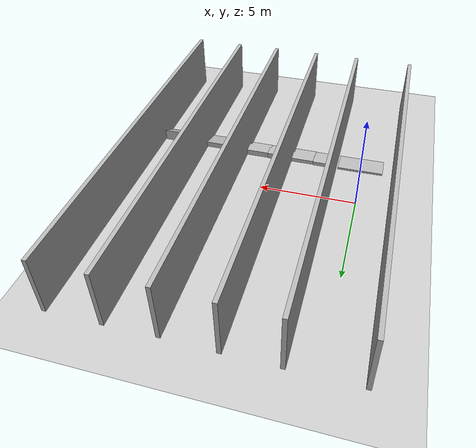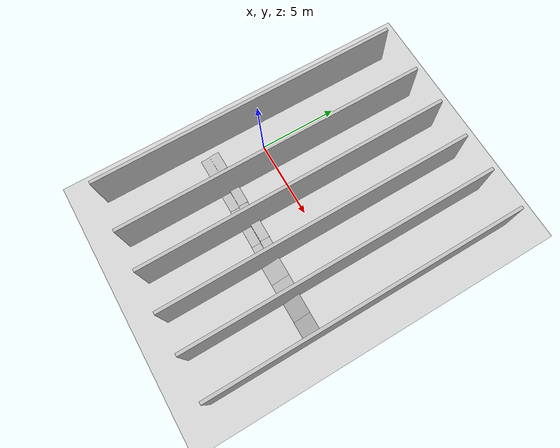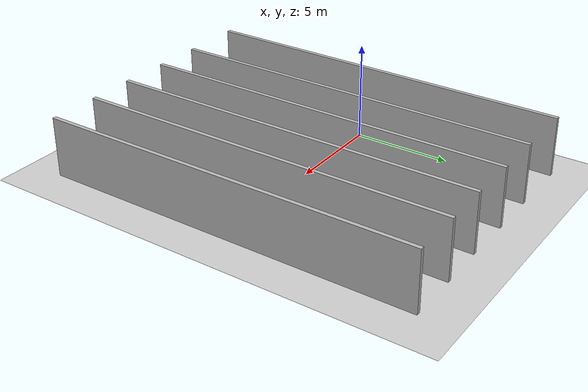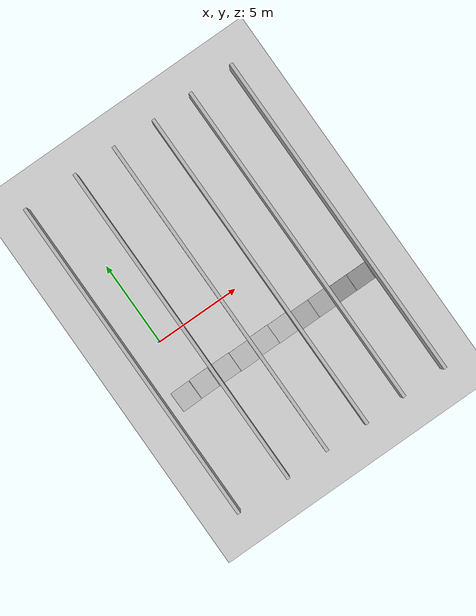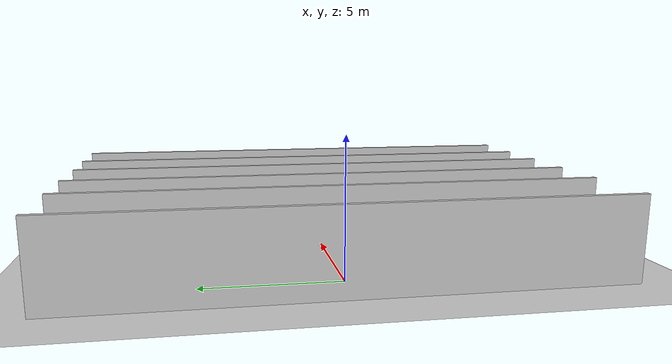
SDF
<sdf version="1.7">
 <world name="default">
  <light name="sun" type="directional">
   <pose>0 0 10 0 -0 0</pose>
   <diffuse>0.8 0.8 0.8 1</diffuse>
   <specular>0.2 0.2 0.2 1</specular>
   <attenuation>
    <range>1000</range>
    <constant>0.9</constant>
    <linear>0.01</linear>
    <quadratic>0.001</quadratic>
   </attenuation>
   <direction>-0.5 0.1 -0.9</direction>
   <spot><inner_angle>0</inner_angle><outer_angle>0</outer_angle><falloff>0</falloff></spot>
  </light>
  <model name="ground_plane">
   <static>1</static>
   <link name="link">
    <collision name="collision">
     <geometry><plane><normal>0 0 1</normal><size>100 100</size></plane></geometry>
     <surface>
      <contact><collide_bitmask>65535</collide_bitmask></contact>
      <friction><ode><mu>100</mu><mu2>50</mu2></ode></friction>
     </surface>
    </collision>
    <visual name="visual">
     <cast_shadows>0</cast_shadows>
     <geometry><plane><normal>0 0 1</normal><size>100 100</size></plane></geometry>
     <material>
      <script><uri>file://media/materials/scripts/gazebo.material</uri><name>Gazebo/Grey</name></script>
     </material>
    </visual>
   </link>
  </model>
  <gravity>0 0 -9.8</gravity>
  <magnetic_field>6e-06 2.3e-05 -4.2e-05</magnetic_field>
  <atmosphere type="adiabatic"/>
  <physics type="ode">
   <max_step_size>0.001</max_step_size>
   <real_time_factor>1</real_time_factor>
   <real_time_update_rate>1000</real_time_update_rate>
  </physics>
  <scene><ambient>0.4 0.4 0.4 1</ambient><background>0.7 0.7 0.7 1</background><shadows>1</shadows></scene>
  <spherical_coordinates>
   <surface_model>EARTH_WGS84</surface_model>
   <latitude_deg>0</latitude_deg>
   <longitude_deg>0</longitude_deg>
   <elevation>0</elevation>
   <heading_deg>0</heading_deg>
  </spherical_coordinates>
  <model name="Wall">
   <static>1</static>
   <link name="link">
    <inertial>
     <pose>0 0 0.4 0 -0 0</pose>
     <mass>500</mass>
     <inertia><ixx>51.2096</ixx><iyy>51.2096</iyy><izz>25</izz><ixy>0</ixy><ixz>0</ixz><iyz>0</iyz></inertia>
    </inertial>
    <collision name="collision">
     <geometry><mesh><scale>1 1 1</scale><uri>model://wall/meshes/wall.dae</uri></mesh></geometry>
    </collision>
    <visual name="visual">
     <geometry><mesh><scale>1 1 1</scale><uri>model://wall/meshes/wall.dae</uri></mesh></geometry>
    </visual>
   </link>
   <pose>-1.72558 0 1.5 0 -0 0</pose>
  </model>
  <model name="Wall_clone">
   <static>1</static>
   <link name="link">
    <inertial>
     <pose>0 0 0.4 0 -0 0</pose>
     <mass>500</mass>
     <inertia><ixx>51.2096</ixx><iyy>51.2096</iyy><izz>25</izz><ixy>0</ixy><ixz>0</ixz><iyz>0</iyz></inertia>
    </inertial>
    <collision name="collision">
     <geometry><mesh><scale>1 1 1</scale><uri>model://wall/meshes/wall.dae</uri></mesh></geometry>
    </collision>
    <visual name="visual">
     <geometry><mesh><scale>1 1 1</scale><uri>model://wall/meshes/wall.dae</uri></mesh></geometry>
    </visual>
   </link>
   <pose>1.48616 0 1.5 0 -0 0</pose>
  </model>
  <model name="Step10">
   <static>1</static>
   <link name="link">
    <gravity>0</gravity>
    <collision name="collision">
     <geometry><mesh><scale>1 1 1</scale><uri>model://step_10/meshes/step10.dae</uri></mesh></geometry>
    </collision>
    <visual name="visual">
     <geometry><mesh><scale>1 1 1</scale><uri>model://step_10/meshes/step10.dae</uri></mesh></geometry>
    </visual>
   </link>
   <pose>1.30177 -3.8 0 0 -0 1.57</pose>
  </model>
  <model name="Step20">
   <static>1</static>
   <link name="link">
    <gravity>0</gravity>
    <collision name="collision">
     <geometry><mesh><scale>1 1 1</scale><uri>model://step_20/meshes/step20.dae</uri></mesh></geometry>
    </collision>
    <visual name="visual">
     <geometry><mesh><scale>1 1 1</scale><uri>model://step_20/meshes/step20.dae</uri></mesh></geometry>
    </visual>
   </link>
   <pose>2.7 -3.8 0 0 -0 1.57</pose>
  </model>
  <model name="Wall_clone_clone_clone">
   <static>1</static>
   <link name="link">
    <inertial>
     <pose>0 0 0.4 0 -0 0</pose>
     <mass>500</mass>
     <inertia><ixx>51.2096</ixx><iyy>51.2096</iyy><izz>25</izz><ixy>0</ixy><ixz>0</ixz><iyz>0</iyz></inertia>
    </inertial>
    <collision name="collision">
     <geometry><mesh><scale>1 1 1</scale><uri>model://wall/meshes/wall.dae</uri></mesh></geometry>
    </collision>
    <visual name="visual">
     <geometry><mesh><scale>1 1 1</scale><uri>model://wall/meshes/wall.dae</uri></mesh></geometry>
    </visual>
   </link>
   <pose>4.01496 0 1.5 0 -0 0</pose>
  </model>
  <model name="Ramp15Deg">
   <static>1</static>
   <link name="link">
    <gravity>0</gravity>
    <collision name="collision">
     <geometry><mesh><scale>1 1 1</scale><uri>model://ramp_15/meshes/nist15.dae</uri></mesh></geometry>
    </collision>
    <visual name="visual">
     <geometry><mesh><scale>1 1 1</scale><uri>model://ramp_15/meshes/nist15.dae</uri></mesh></geometry>
    </visual>
   </link>
   <pose>9.03169 -3.88275 0 0 -0 1.57</pose>
  </model>
  <model name="Wall_clone_clone_clone_clone">
   <static>1</static>
   <link name="link">
    <inertial>
     <pose>0 0 0.4 0 -0 0</pose>
     <mass>500</mass>
     <inertia><ixx>51.2096</ixx><iyy>51.2096</iyy><izz>25</izz><ixy>0</ixy><ixz>0</ixz><iyz>0</iyz></inertia>
    </inertial>
    <collision name="collision">
     <geometry><mesh><scale>1 1 1</scale><uri>model://wall/meshes/wall.dae</uri></mesh></geometry>
    </collision>
    <visual name="visual">
     <geometry><mesh><scale>1 1 1</scale><uri>model://wall/meshes/wall.dae</uri></mesh></geometry>
    </visual>
   </link>
   <pose>6.56906 -0.041893 1.5 0 -0 0</pose>
  </model>
  <model name="Ramp30Deg">
   <static>1</static>
   <link name="link">
    <gravity>0</gravity>
    <collision name="collision">
     <geometry><mesh><scale>1 1 1</scale><uri>model://ramp_30/meshes/nist30.dae</uri></mesh></geometry>
    </collision>
    <visual name="visual">
     <geometry><mesh><scale>1 1 1</scale><uri>model://ramp_30/meshes/nist30.dae</uri></mesh></geometry>
    </visual>
   </link>
   <pose>11.5042 -3.85601 0 0 -0 1.57</pose>
  </model>
  <model name="Wall_clone_clone_clone_clone_clone">
   <static>1</static>
   <link name="link">
    <inertial>
     <pose>0 0 0.4 0 -0 0</pose>
     <mass>500</mass>
     <inertia><ixx>51.2096</ixx><iyy>51.2096</iyy><izz>25</izz><ixy>0</ixy><ixz>0</ixz><iyz>0</iyz></inertia>
    </inertial>
    <collision name="collision">
     <geometry><mesh><scale>1 1 1</scale><uri>model://wall/meshes/wall.dae</uri></mesh></geometry>
    </collision>
    <visual name="visual">
     <geometry><mesh><scale>1 1 1</scale><uri>model://wall/meshes/wall.dae</uri></mesh></geometry>
    </visual>
   </link>
   <pose>9.00414 0 1.5 0 -0 0</pose>
  </model>
  <model name="Step20_clone">
   <static>1</static>
   <link name="link">
    <gravity>0</gravity>
    <collision name="collision">
     <geometry><mesh><scale>1 1 1</scale><uri>model://step_20/meshes/step20.dae</uri></mesh></geometry>
    </collision>
    <visual name="visual">
     <geometry><mesh><scale>1 1 1</scale><uri>model://step_20/meshes/step20.dae</uri></mesh></geometry>
    </visual>
   </link>
   <pose>3.9052 -3.83014 0 0 -0 1.57</pose>
  </model>
  <model name="Step30">
   <static>1</static>
   <link name="link">
    <gravity>0</gravity>
    <collision name="collision">
     <geometry><mesh><scale>1 1 1</scale><uri>model://step_30/meshes/step30.dae</uri></mesh></geometry>
    </collision>
    <visual name="visual">
     <geometry><mesh><scale>1 1 1</scale><uri>model://step_30/meshes/step30.dae</uri></mesh></geometry>
    </visual>
   </link>
   <pose>5.28279 -3.77 0 0 -0 1.57</pose>
  </model>
  <model name="Step30_clone">
   <static>1</static>
   <link name="link">
    <gravity>0</gravity>
    <collision name="collision">
     <geometry><mesh><scale>1 1 1</scale><uri>model://step_30/meshes/step30.dae</uri></mesh></geometry>
    </collision>
    <visual name="visual">
     <geometry><mesh><scale>1 1 1</scale><uri>model://step_30/meshes/step30.dae</uri></mesh></geometry>
    </visual>
   </link>
   <pose>6.46677 -3.78931 0 0 -0 1.57</pose>
  </model>
  <model name="Step10_clone">
   <static>1</static>
   <link name="link">
    <gravity>0</gravity>
    <collision name="collision">
     <geometry><mesh><scale>1 1 1</scale><uri>model://step_10/meshes/step10.dae</uri></mesh></geometry>
    </collision>
    <visual name="visual">
     <geometry><mesh><scale>1 1 1</scale><uri>model://step_10/meshes/step10.dae</uri></mesh></geometry>
    </visual>
   </link>
   <pose>0.093726 -3.81155 0 0 -0 1.58518</pose>
  </model>
  <model name="Ramp15Deg_clone">
   <static>1</static>
   <link name="link">
    <gravity>0</gravity>
    <collision name="collision">
     <geometry><mesh><scale>1 1 1</scale><uri>model://ramp_15/meshes/nist15.dae</uri></mesh></geometry>
    </collision>
    <visual name="visual">
     <geometry><mesh><scale>1 1 1</scale><uri>model://ramp_15/meshes/nist15.dae</uri></mesh></geometry>
    </visual>
   </link>
   <pose>7.85149 -3.87801 0 0 -0 1.57</pose>
  </model>
  <model name="Ramp30Deg_clone">
   <static>1</static>
   <link name="link">
    <gravity>0</gravity>
    <collision name="collision">
     <geometry><mesh><scale>1 1 1</scale><uri>model://ramp_30/meshes/nist30.dae</uri></mesh></geometry>
    </collision>
    <visual name="visual">
     <geometry><mesh><scale>1 1 1</scale><uri>model://ramp_30/meshes/nist30.dae</uri></mesh></geometry>
    </visual>
   </link>
   <pose>10.3114 -3.84889 0 0 -0 1.57</pose>
  </model>
  <model name="Wall_clone_clone_clone_clone_clone_clone">
   <static>1</static>
   <link name="link">
    <inertial>
     <pose>0 0 0.4 0 -0 0</pose>
     <mass>500</mass>
     <inertia><ixx>51.2096</ixx><iyy>51.2096</iyy><izz>25</izz><ixy>0</ixy><ixz>0</ixz><iyz>0</iyz></inertia>
    </inertial>
    <collision name="collision">
     <geometry><mesh><scale>1 1 1</scale><uri>model://wall/meshes/wall.dae</uri></mesh></geometry>
    </collision>
    <visual name="visual">
     <geometry><mesh><scale>1 1 1</scale><uri>model://wall/meshes/wall.dae</uri></mesh></geometry>
    </visual>
   </link>
   <pose>11.6488 0 1.5 0 -0 0</pose>
  </model>
 </world>
</sdf>
